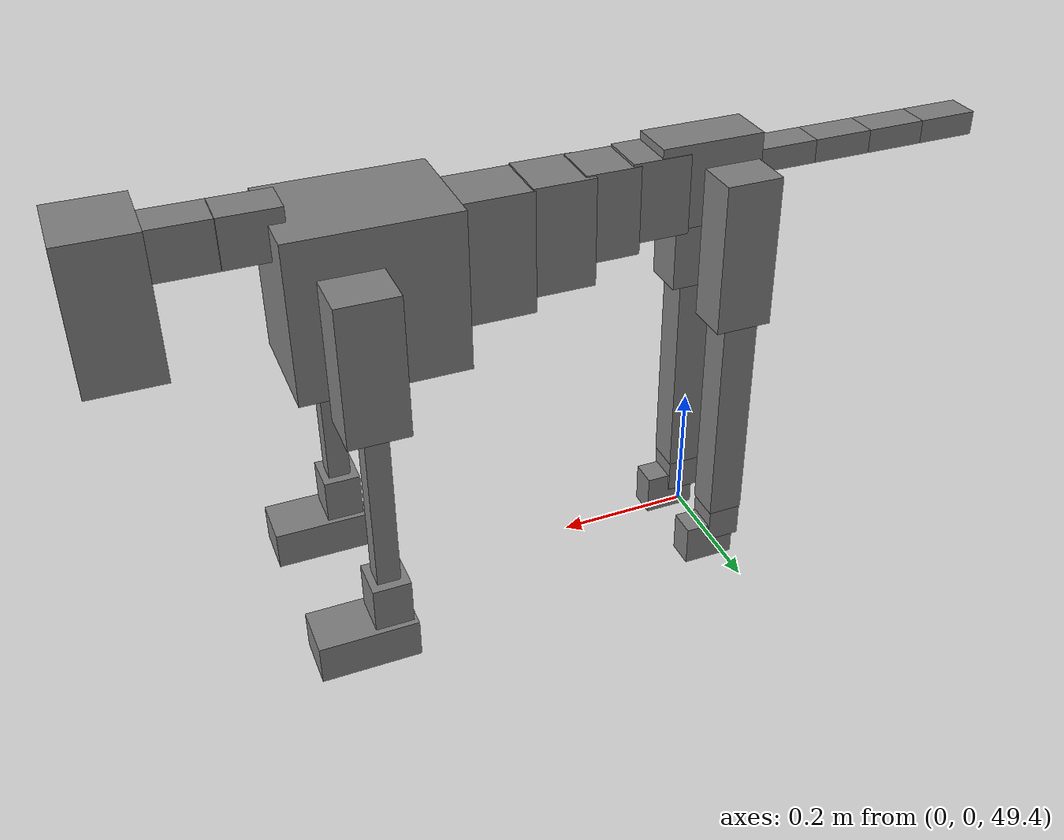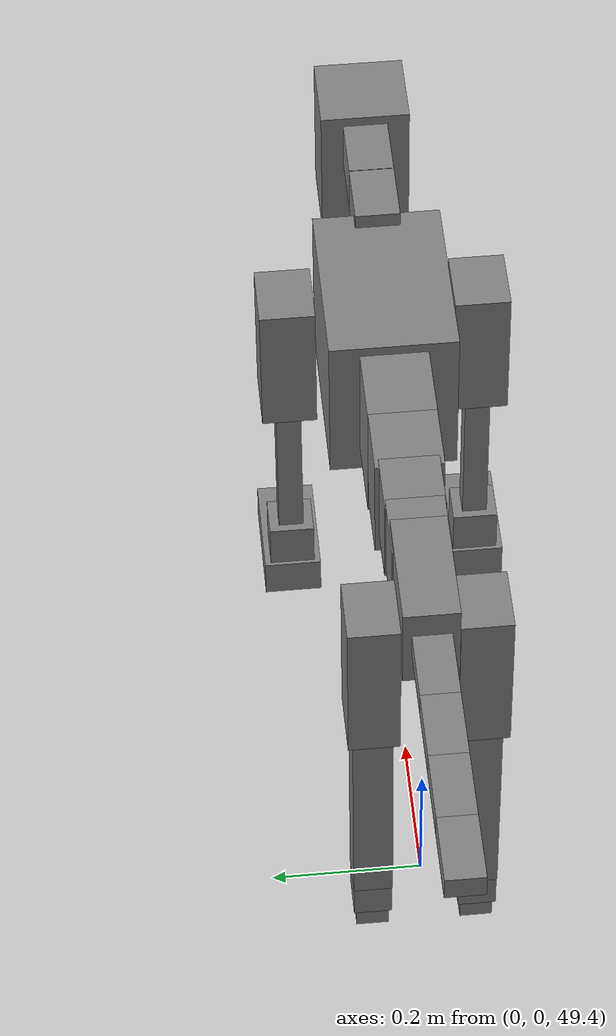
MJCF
<mujoco model="dog">

    <default>
        <joint armature="0.02" stiffness="1" damping="0.2" limited="true"/>
        <geom condim="3" friction="1 0.05 0.05" margin="0.01"/>
        <motor ctrllimited="true" ctrlrange="-1.0 1.0" forcelimited="true" gear="50"/>
    </default>

    <compiler inertiafromgeom="true" angle="radian"/>

    <option timestep="0.016" iterations="50" tolerance="1e-10" solver="Newton" jacobian="dense" cone="pyramidal"/>

    <size nconmax="20000" njmax="60000" nstack="5000000"/>
    <visual>
        <map force="0.1" zfar="30"/>
        <rgba haze="0.15 0.25 0.35 1"/>
        <quality shadowsize="2048"/>
        <global offwidth="800" offheight="800"/>
    </visual>

    <asset>
        <texture type="skybox" builtin="gradient" rgb1="0.3 0.5 0.7" rgb2="0 0 0" width="512" height="512"/>
        <texture name="texplane" type="2d" builtin="checker" rgb1=".2 .3 .4" rgb2=".1 0.15 0.2" width="512" height="512"
                 mark="cross" markrgb=".8 .8 .8"/>
        <texture name="texgeom" type="cube" builtin="flat" mark="cross" width="127" height="1278" rgb1="0.8 0.6 0.4"
                 rgb2="0.8 0.6 0.4" markrgb="1 1 1" random="0.01"/>

        <material name="matplane" reflectance="0.3" texture="texplane" texrepeat="1 1" texuniform="true"/>
        <material name="matgeom" texture="texgeom" texuniform="true" rgba="0.8 0.6 .4 1"/>
    </asset>

    <worldbody>
        <geom name="floor" pos="0 0 0" size="0 0 .25" type="plane" material="matplane" condim="3"/>

        <light directional="false" diffuse=".2 .2 .2" specular="0 0 0" pos="0 0 5" dir="0 0 -1" castshadow="false"/>
        <light mode="targetbodycom" target="torso" directional="false" diffuse=".8 .8 .8" specular="0.3 0.3 0.3"
               pos="0 0 4.0" dir="0 0 -1"/>

        <body name="root" pos="0 0 50">
            <freejoint name="root_1"/>
            <geom type="box" pos="0 0 -0.02" size="0.0774  0.0358  0.063" density="2030"/>

            <body name="spine1" pos="0.054 0 0">
                <joint name="spine1_y" axis="0 1 0" range="0 0.7" limited="true"/>
                <geom type="box" pos="0.02375 0 -0.03" size="0.04375  0.0375  0.05985" density="2030"/>

                <body name="spine2" pos="0.0612 0 0">
                    <joint name="spine2_y" axis="0 1 0" range="-0.15 0.15" limited="true"/>
                    <geom type="box" pos="0.03555  0  -0.04" size="0.04055  0.039  0.06615" density="2030"/>

                    <body name="spine3" pos="0.0730 0 0">
                        <joint name="spine3_y" axis="0 1 0" range="-0.15 0.15" limited="true"/>
                        <geom type="box" pos="0.03555  0  -0.057" size="0.04555  0.0445  0.081" density="2030"/>

                        <body name="spine4" pos="0.0780 0 0">
                            <joint name="spine4_y" axis="0 1 0" range="-0.15 0.15" limited="true"/>
                            <geom type="box" pos="0.05265  0  -0.07" size="0.05265  0.045  0.09135" density="2030"/>

                            <body name="torso" pos="0.1082 0 0">
                                <joint name="torso_y" axis="0 1 0" range="-0.15 0.15" limited="true"/>
                                <geom type="box" pos="0.11925  0  -0.085" size="0.11925  0.085  0.11745"
                                      density="2030"/>

                                <body name="neck1" pos="0.2160  0   0.0180">
                                    <joint name="neck1_y" axis="0 1 0" range="-1.2  -1" limited="true"/>
                                    <geom type="box" pos="0.0423  0  0" size="0.0423  0.03  0.036" density="2325"/>

                                    <body name="neck2" pos="0.0853  0  0">
                                        <joint name="neck2_y" axis="0 1 0" range="0.1  0" limited="true"/>
                                        <geom type="box" pos="0.0423  0  0" size="0.0423  0.03  0.036" density="2325"/>

                                        <body name="head" pos="0.0853  0  0">
                                            <joint name="head_y" axis="0 1 0" range="-0.3  -0.2" limited="true"/>
                                            <geom type="box" pos="0.0531  0  -0.055" size="0.0531  0.06  0.1044"
                                                  density="4030"/>

                                        </body>
                                    </body>
                                </body>

                                <body name="front_shoulder" pos="0.156  0   -0.0480">
                                    <joint name="front_shoulder_y" axis="0 1 0" range="-1 1.5" limited="true"/>
                                    <geom type="box" pos="0 0.13 -0.0766" size="0.0434  0.0371  0.1033" density="1158"/>
                                    <geom type="box" pos="0 -0.13 -0.0766" size="0.0434  0.0371  0.1033"
                                          density="1158"/>

                                    <body name="front_elbow" pos="0  0  -0.1533">
                                        <joint name="front_elbow_y" axis="0 1 0" range="-2 0" limited="true"/>
                                        <geom type="box" pos="0 0.13 -0.1446" size="0.0169  0.0172  0.1446"
                                              density="1081"/>
                                        <geom type="box" pos="0 -0.13 -0.1446" size="0.0169  0.0172  0.1446"
                                              density="1081"/>

                                        <body name="front_wrist" pos="0  0  -0.2893">
                                            <joint name="front_wrist_y" axis="0 1 0" range="-0.2 0" limited="true"/>
                                            <geom type="box" pos="0 0.13 -0.0352" size="0.0278  0.0309  0.0484"
                                                  density="1664"/>
                                            <geom type="box" pos="0 -0.13 -0.0352" size="0.0278  0.0309  0.0484"
                                                  density="1664"/>

                                            <body name="front_finger_end" pos="0  0  -0.0705">
                                                <joint name="front_finger_y" axis="0 1 0" range="-0.4 1"
                                                       limited="true"/>
                                                <geom type="box" pos="0.0394  0.13  -0.0146"
                                                      size="0.0722  0.0394  0.0296" density="1515"/>
                                                <geom type="box" pos="0.0394  -0.13  -0.0146"
                                                      size="0.0722  0.0394  0.0296" density="1515"/>

                                            </body>

                                        </body>
                                    </body>
                                </body>

                            </body>
                        </body>
                    </body>
                </body>
            </body>

            <body name="back_hip" pos="-0.03 0 -0.018">
                <joint name="back_hip_y" axis="0 1 0" range="-1.5 0.3" limited="true"/>
                <geom type="box" pos="0 0.07 -0.0921" size="0.0424  0.0332  0.1149" density="1154"/>
                <geom type="box" pos="0 -0.07 -0.0921" size="0.0424  0.0332  0.1149" density="1154"/>

                <body name="back_knee" pos="0  0  -0.1843">
                    <joint name="back_knee_y" axis="0 1 0" range="0 2.8" limited="true"/>
                    <geom type="box" pos="0 0.07 -0.1728" size="0.0265  0.0261  0.1883" density="1227"/>
                    <geom type="box" pos="0 -0.07 -0.1728" size="0.0265  0.0261  0.1883" density="1227"/>

                    <body name="back_ankle" pos="0  0  -0.3456">
                        <joint name="back_ankle_y" axis="0 1 0" range="-2.2 0" limited="true"/>
                        <geom type="box" pos="0 0.07 -0.0289" size="0.0254  0.0254  0.0402" density="1284"/>
                        <geom type="box" pos="0 -0.07 -0.0289" size="0.0254  0.0254  0.0402" density="1284"/>

                        <body name="back_toe_end" pos="0  0  -0.0578">
                            <joint name="back_toe_y" axis="0 1 0" range="-0.4 1" limited="true"/>
                            <geom type="box" pos="0.0216  0.07  -0.0172" size="0.0396  0.0216  0.0322" density="1515"/>
                            <geom type="box" pos="0.0216  -0.07  -0.0172" size="0.0396  0.0216  0.0322" density="1515"/>

                        </body>
                    </body>
                </body>
            </body>

            <body name="tail1" pos="-0.074 0 -0.006">
                <joint name="tail1_y" axis="0 1 0" range="-0.2 0.2" limited="true"/>
                <geom type="box" pos="-0.0536  0  0" size="0.045  0.025  0.0175" density="1587"/>

                <body name="tail2" pos="-0.09 0 0">
                    <joint name="tail2_y" axis="0 1 0" range="-0.2 0.2" limited="true"/>
                    <geom type="box" pos="-0.0536  0  0" size="0.045  0.025  0.0175" density="1587"/>

                    <body name="tail3" pos="-0.09 0 0">
                        <joint name="tail3_y" axis="0 1 0" range="-0.2 0.2" limited="true"/>
                        <geom type="box" pos="-0.0536  0  0" size="0.045  0.025  0.0175" density="1587"/>

                        <body name="tail4" pos="-0.09 0 0">
                            <joint name="tail4_y" axis="0 1 0" range="-0.2 0.2" limited="true"/>
                            <geom type="box" pos="-0.0536  0  0" size="0.045  0.025  0.0175" density="1587"/>

                        </body>
                    </body>
                </body>
            </body>
        </body>
    </worldbody>

    <actuator>
        <motor joint="spine1_y" forcerange="-150 150     "/>
        <motor joint="spine2_y" forcerange="-150 150     "/>
        <motor joint="spine3_y" forcerange="-150 150     "/>
        <motor joint="spine4_y" forcerange="-150 150     "/>
        <motor joint="torso_y" forcerange="-150 150     "/>
        <motor joint="neck1_y" forcerange="-100 100       "/>
        <motor joint="neck2_y" forcerange="-100 100       "/>
        <motor joint="head_y" forcerange="-150 150       "/>
        <motor joint="front_shoulder_y" forcerange="-179.45 167.96"/>
        <motor joint="front_elbow_y" forcerange="-110.46 114.83"/>
        <motor joint="front_wrist_y" forcerange="-135.44 111.70"/>
        <motor joint="front_finger_y" forcerange="-86.27 83.86"/>
        <motor joint="back_hip_y" forcerange="-289.60 353.72"/>
        <motor joint="back_knee_y" forcerange="-204.62 375.09"/>
        <motor joint="back_angle_y" forcerange="-126.42 180.49"/>
        <motor joint="back_toe_y" forcerange="-57.67 35.14"/>
        <motor joint="tail1_y" forcerange="-50 50     "/>
        <motor joint="tail2_y" forcerange="-50 50     "/>
        <motor joint="tail3_y" forcerange="-50 50     "/>
        <motor joint="tail4_y" forcerange="-50 50     "/>
    </actuator>
</mujoco>
